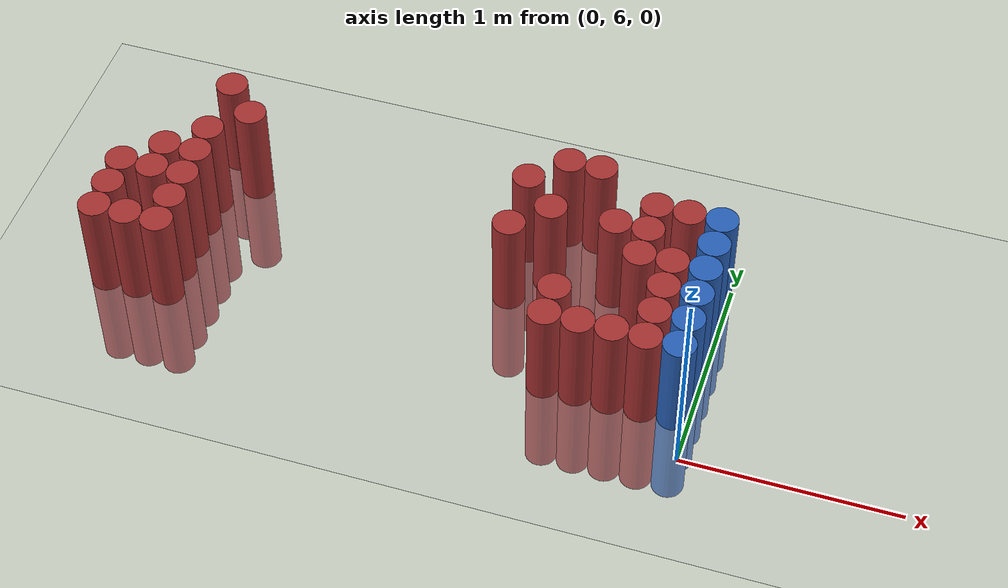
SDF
<sdf version="1.6">
 <world name="default">
  <model name="ground_plane">
   <static>1</static>
   <link name="link">
    <collision name="collision">
     <geometry><plane><normal>0 0 1</normal><size>100 100</size></plane></geometry>
     <surface><friction><ode><mu>100</mu><mu2>50</mu2></ode></friction></surface>
    </collision>
    <visual name="visual">
     <cast_shadows>0</cast_shadows>
     <geometry><plane><normal>0 0 1</normal><size>100 100</size></plane></geometry>
     <material>
      <script><uri>file://media/materials/scripts/gazebo.material</uri><name>Gazebo/Grey</name></script>
     </material>
    </visual>
   </link>
  </model>
  <model name="unit_cylinder_199">
   <static>1</static>
   <pose>-2.775000 6.225000 0.000000 0.000000 0.000000 0.000000</pose>
   <link name="link">
    <inertial>
     <mass>1</mass>
     <inertia><ixx>0.145833</ixx><ixy>0</ixy><ixz>0</ixz><iyy>0.145833</iyy><iyz>0</iyz><izz>0.125</izz></inertia>
    </inertial>
    <collision name="collision">
     <geometry><cylinder><radius>0.075000</radius><length>1</length></cylinder></geometry>
    </collision>
    <visual name="visual">
     <geometry><cylinder><radius>0.075000</radius><length>1</length></cylinder></geometry>
     <material>
      <ambient>0.648000 0.192000 0.192000 1</ambient>
      <diffuse>0.648000 0.192000 0.192000 1</diffuse>
     </material>
     <material>
      <script><name>Gazebo/Grey</name><uri>file://media/materials/scripts/gazebo.material</uri></script>
     </material>
    </visual>
    <sensor name="sensor_contact" type="contact"><contact><collision>collision</collision></contact></sensor>
   </link>
   <plugin filename="gz-sim-touchplugin-system" name="gz::sim::systems::TouchPlugin">
    <target>robot</target>
    <namespace>robot</namespace>
    <time>0.001</time>
    <enabled>true</enabled>
   </plugin>
  </model>
  <model name="unit_cylinder_200">
   <static>1</static>
   <pose>-2.775000 6.375000 0.000000 0.000000 0.000000 0.000000</pose>
   <link name="link">
    <inertial>
     <mass>1</mass>
     <inertia><ixx>0.145833</ixx><ixy>0</ixy><ixz>0</ixz><iyy>0.145833</iyy><iyz>0</iyz><izz>0.125</izz></inertia>
    </inertial>
    <collision name="collision">
     <geometry><cylinder><radius>0.075000</radius><length>1</length></cylinder></geometry>
    </collision>
    <visual name="visual">
     <geometry><cylinder><radius>0.075000</radius><length>1</length></cylinder></geometry>
     <material>
      <ambient>0.648000 0.192000 0.192000 1</ambient>
      <diffuse>0.648000 0.192000 0.192000 1</diffuse>
     </material>
     <material>
      <script><name>Gazebo/Grey</name><uri>file://media/materials/scripts/gazebo.material</uri></script>
     </material>
    </visual>
    <sensor name="sensor_contact" type="contact"><contact><collision>collision</collision></contact></sensor>
   </link>
   <plugin filename="gz-sim-touchplugin-system" name="gz::sim::systems::TouchPlugin">
    <target>robot</target>
    <namespace>robot</namespace>
    <time>0.001</time>
    <enabled>true</enabled>
   </plugin>
  </model>
  <model name="unit_cylinder_201">
   <static>1</static>
   <pose>-2.775000 6.525000 0.000000 0.000000 0.000000 0.000000</pose>
   <link name="link">
    <inertial>
     <mass>1</mass>
     <inertia><ixx>0.145833</ixx><ixy>0</ixy><ixz>0</ixz><iyy>0.145833</iyy><iyz>0</iyz><izz>0.125</izz></inertia>
    </inertial>
    <collision name="collision">
     <geometry><cylinder><radius>0.075000</radius><length>1</length></cylinder></geometry>
    </collision>
    <visual name="visual">
     <geometry><cylinder><radius>0.075000</radius><length>1</length></cylinder></geometry>
     <material>
      <ambient>0.648000 0.192000 0.192000 1</ambient>
      <diffuse>0.648000 0.192000 0.192000 1</diffuse>
     </material>
     <material>
      <script><name>Gazebo/Grey</name><uri>file://media/materials/scripts/gazebo.material</uri></script>
     </material>
    </visual>
    <sensor name="sensor_contact" type="contact"><contact><collision>collision</collision></contact></sensor>
   </link>
   <plugin filename="gz-sim-touchplugin-system" name="gz::sim::systems::TouchPlugin">
    <target>robot</target>
    <namespace>robot</namespace>
    <time>0.001</time>
    <enabled>true</enabled>
   </plugin>
  </model>
  <model name="unit_cylinder_209">
   <static>1</static>
   <pose>-2.625000 6.225000 0.000000 0.000000 0.000000 0.000000</pose>
   <link name="link">
    <inertial>
     <mass>1</mass>
     <inertia><ixx>0.145833</ixx><ixy>0</ixy><ixz>0</ixz><iyy>0.145833</iyy><iyz>0</iyz><izz>0.125</izz></inertia>
    </inertial>
    <collision name="collision">
     <geometry><cylinder><radius>0.075000</radius><length>1</length></cylinder></geometry>
    </collision>
    <visual name="visual">
     <geometry><cylinder><radius>0.075000</radius><length>1</length></cylinder></geometry>
     <material>
      <ambient>0.648000 0.192000 0.192000 1</ambient>
      <diffuse>0.648000 0.192000 0.192000 1</diffuse>
     </material>
     <material>
      <script><name>Gazebo/Grey</name><uri>file://media/materials/scripts/gazebo.material</uri></script>
     </material>
    </visual>
    <sensor name="sensor_contact" type="contact"><contact><collision>collision</collision></contact></sensor>
   </link>
   <plugin filename="gz-sim-touchplugin-system" name="gz::sim::systems::TouchPlugin">
    <target>robot</target>
    <namespace>robot</namespace>
    <time>0.001</time>
    <enabled>true</enabled>
   </plugin>
  </model>
  <model name="unit_cylinder_210">
   <static>1</static>
   <pose>-2.625000 6.525000 0.000000 0.000000 0.000000 0.000000</pose>
   <link name="link">
    <inertial>
     <mass>1</mass>
     <inertia><ixx>0.145833</ixx><ixy>0</ixy><ixz>0</ixz><iyy>0.145833</iyy><iyz>0</iyz><izz>0.125</izz></inertia>
    </inertial>
    <collision name="collision">
     <geometry><cylinder><radius>0.075000</radius><length>1</length></cylinder></geometry>
    </collision>
    <visual name="visual">
     <geometry><cylinder><radius>0.075000</radius><length>1</length></cylinder></geometry>
     <material>
      <ambient>0.648000 0.192000 0.192000 1</ambient>
      <diffuse>0.648000 0.192000 0.192000 1</diffuse>
     </material>
     <material>
      <script><name>Gazebo/Grey</name><uri>file://media/materials/scripts/gazebo.material</uri></script>
     </material>
    </visual>
    <sensor name="sensor_contact" type="contact"><contact><collision>collision</collision></contact></sensor>
   </link>
   <plugin filename="gz-sim-touchplugin-system" name="gz::sim::systems::TouchPlugin">
    <target>robot</target>
    <namespace>robot</namespace>
    <time>0.001</time>
    <enabled>true</enabled>
   </plugin>
  </model>
  <model name="unit_cylinder_211">
   <static>1</static>
   <pose>-2.625000 6.675000 0.000000 0.000000 0.000000 0.000000</pose>
   <link name="link">
    <inertial>
     <mass>1</mass>
     <inertia><ixx>0.145833</ixx><ixy>0</ixy><ixz>0</ixz><iyy>0.145833</iyy><iyz>0</iyz><izz>0.125</izz></inertia>
    </inertial>
    <collision name="collision">
     <geometry><cylinder><radius>0.075000</radius><length>1</length></cylinder></geometry>
    </collision>
    <visual name="visual">
     <geometry><cylinder><radius>0.075000</radius><length>1</length></cylinder></geometry>
     <material>
      <ambient>0.648000 0.192000 0.192000 1</ambient>
      <diffuse>0.648000 0.192000 0.192000 1</diffuse>
     </material>
     <material>
      <script><name>Gazebo/Grey</name><uri>file://media/materials/scripts/gazebo.material</uri></script>
     </material>
    </visual>
    <sensor name="sensor_contact" type="contact"><contact><collision>collision</collision></contact></sensor>
   </link>
   <plugin filename="gz-sim-touchplugin-system" name="gz::sim::systems::TouchPlugin">
    <target>robot</target>
    <namespace>robot</namespace>
    <time>0.001</time>
    <enabled>true</enabled>
   </plugin>
  </model>
  <model name="unit_cylinder_219">
   <static>1</static>
   <pose>-2.475000 6.225000 0.000000 0.000000 0.000000 0.000000</pose>
   <link name="link">
    <inertial>
     <mass>1</mass>
     <inertia><ixx>0.145833</ixx><ixy>0</ixy><ixz>0</ixz><iyy>0.145833</iyy><iyz>0</iyz><izz>0.125</izz></inertia>
    </inertial>
    <collision name="collision">
     <geometry><cylinder><radius>0.075000</radius><length>1</length></cylinder></geometry>
    </collision>
    <visual name="visual">
     <geometry><cylinder><radius>0.075000</radius><length>1</length></cylinder></geometry>
     <material>
      <ambient>0.648000 0.192000 0.192000 1</ambient>
      <diffuse>0.648000 0.192000 0.192000 1</diffuse>
     </material>
     <material>
      <script><name>Gazebo/Grey</name><uri>file://media/materials/scripts/gazebo.material</uri></script>
     </material>
    </visual>
    <sensor name="sensor_contact" type="contact"><contact><collision>collision</collision></contact></sensor>
   </link>
   <plugin filename="gz-sim-touchplugin-system" name="gz::sim::systems::TouchPlugin">
    <target>robot</target>
    <namespace>robot</namespace>
    <time>0.001</time>
    <enabled>true</enabled>
   </plugin>
  </model>
  <model name="unit_cylinder_220">
   <static>1</static>
   <pose>-2.475000 6.375000 0.000000 0.000000 0.000000 0.000000</pose>
   <link name="link">
    <inertial>
     <mass>1</mass>
     <inertia><ixx>0.145833</ixx><ixy>0</ixy><ixz>0</ixz><iyy>0.145833</iyy><iyz>0</iyz><izz>0.125</izz></inertia>
    </inertial>
    <collision name="collision">
     <geometry><cylinder><radius>0.075000</radius><length>1</length></cylinder></geometry>
    </collision>
    <visual name="visual">
     <geometry><cylinder><radius>0.075000</radius><length>1</length></cylinder></geometry>
     <material>
      <ambient>0.648000 0.192000 0.192000 1</ambient>
      <diffuse>0.648000 0.192000 0.192000 1</diffuse>
     </material>
     <material>
      <script><name>Gazebo/Grey</name><uri>file://media/materials/scripts/gazebo.material</uri></script>
     </material>
    </visual>
    <sensor name="sensor_contact" type="contact"><contact><collision>collision</collision></contact></sensor>
   </link>
   <plugin filename="gz-sim-touchplugin-system" name="gz::sim::systems::TouchPlugin">
    <target>robot</target>
    <namespace>robot</namespace>
    <time>0.001</time>
    <enabled>true</enabled>
   </plugin>
  </model>
  <model name="unit_cylinder_221">
   <static>1</static>
   <pose>-2.475000 6.525000 0.000000 0.000000 0.000000 0.000000</pose>
   <link name="link">
    <inertial>
     <mass>1</mass>
     <inertia><ixx>0.145833</ixx><ixy>0</ixy><ixz>0</ixz><iyy>0.145833</iyy><iyz>0</iyz><izz>0.125</izz></inertia>
    </inertial>
    <collision name="collision">
     <geometry><cylinder><radius>0.075000</radius><length>1</length></cylinder></geometry>
    </collision>
    <visual name="visual">
     <geometry><cylinder><radius>0.075000</radius><length>1</length></cylinder></geometry>
     <material>
      <ambient>0.648000 0.192000 0.192000 1</ambient>
      <diffuse>0.648000 0.192000 0.192000 1</diffuse>
     </material>
     <material>
      <script><name>Gazebo/Grey</name><uri>file://media/materials/scripts/gazebo.material</uri></script>
     </material>
    </visual>
    <sensor name="sensor_contact" type="contact"><contact><collision>collision</collision></contact></sensor>
   </link>
   <plugin filename="gz-sim-touchplugin-system" name="gz::sim::systems::TouchPlugin">
    <target>robot</target>
    <namespace>robot</namespace>
    <time>0.001</time>
    <enabled>true</enabled>
   </plugin>
  </model>
  <model name="unit_cylinder_222">
   <static>1</static>
   <pose>-2.475000 6.675000 0.000000 0.000000 0.000000 0.000000</pose>
   <link name="link">
    <inertial>
     <mass>1</mass>
     <inertia><ixx>0.145833</ixx><ixy>0</ixy><ixz>0</ixz><iyy>0.145833</iyy><iyz>0</iyz><izz>0.125</izz></inertia>
    </inertial>
    <collision name="collision">
     <geometry><cylinder><radius>0.075000</radius><length>1</length></cylinder></geometry>
    </collision>
    <visual name="visual">
     <geometry><cylinder><radius>0.075000</radius><length>1</length></cylinder></geometry>
     <material>
      <ambient>0.648000 0.192000 0.192000 1</ambient>
      <diffuse>0.648000 0.192000 0.192000 1</diffuse>
     </material>
     <material>
      <script><name>Gazebo/Grey</name><uri>file://media/materials/scripts/gazebo.material</uri></script>
     </material>
    </visual>
    <sensor name="sensor_contact" type="contact"><contact><collision>collision</collision></contact></sensor>
   </link>
   <plugin filename="gz-sim-touchplugin-system" name="gz::sim::systems::TouchPlugin">
    <target>robot</target>
    <namespace>robot</namespace>
    <time>0.001</time>
    <enabled>true</enabled>
   </plugin>
  </model>
  <model name="unit_cylinder_223">
   <static>1</static>
   <pose>-2.475000 6.825000 0.000000 0.000000 0.000000 0.000000</pose>
   <link name="link">
    <inertial>
     <mass>1</mass>
     <inertia><ixx>0.145833</ixx><ixy>0</ixy><ixz>0</ixz><iyy>0.145833</iyy><iyz>0</iyz><izz>0.125</izz></inertia>
    </inertial>
    <collision name="collision">
     <geometry><cylinder><radius>0.075000</radius><length>1</length></cylinder></geometry>
    </collision>
    <visual name="visual">
     <geometry><cylinder><radius>0.075000</radius><length>1</length></cylinder></geometry>
     <material>
      <ambient>0.648000 0.192000 0.192000 1</ambient>
      <diffuse>0.648000 0.192000 0.192000 1</diffuse>
     </material>
     <material>
      <script><name>Gazebo/Grey</name><uri>file://media/materials/scripts/gazebo.material</uri></script>
     </material>
    </visual>
    <sensor name="sensor_contact" type="contact"><contact><collision>collision</collision></contact></sensor>
   </link>
   <plugin filename="gz-sim-touchplugin-system" name="gz::sim::systems::TouchPlugin">
    <target>robot</target>
    <namespace>robot</namespace>
    <time>0.001</time>
    <enabled>true</enabled>
   </plugin>
  </model>
  <model name="unit_cylinder_224">
   <static>1</static>
   <pose>-2.475000 7.125000 0.000000 0.000000 0.000000 0.000000</pose>
   <link name="link">
    <inertial>
     <mass>1</mass>
     <inertia><ixx>0.145833</ixx><ixy>0</ixy><ixz>0</ixz><iyy>0.145833</iyy><iyz>0</iyz><izz>0.125</izz></inertia>
    </inertial>
    <collision name="collision">
     <geometry><cylinder><radius>0.075000</radius><length>1</length></cylinder></geometry>
    </collision>
    <visual name="visual">
     <geometry><cylinder><radius>0.075000</radius><length>1</length></cylinder></geometry>
     <material>
      <ambient>0.648000 0.192000 0.192000 1</ambient>
      <diffuse>0.648000 0.192000 0.192000 1</diffuse>
     </material>
     <material>
      <script><name>Gazebo/Grey</name><uri>file://media/materials/scripts/gazebo.material</uri></script>
     </material>
    </visual>
    <sensor name="sensor_contact" type="contact"><contact><collision>collision</collision></contact></sensor>
   </link>
   <plugin filename="gz-sim-touchplugin-system" name="gz::sim::systems::TouchPlugin">
    <target>robot</target>
    <namespace>robot</namespace>
    <time>0.001</time>
    <enabled>true</enabled>
   </plugin>
  </model>
  <model name="unit_cylinder_235">
   <static>1</static>
   <pose>-2.325000 6.975000 0.000000 0.000000 0.000000 0.000000</pose>
   <link name="link">
    <inertial>
     <mass>1</mass>
     <inertia><ixx>0.145833</ixx><ixy>0</ixy><ixz>0</ixz><iyy>0.145833</iyy><iyz>0</iyz><izz>0.125</izz></inertia>
    </inertial>
    <collision name="collision">
     <geometry><cylinder><radius>0.075000</radius><length>1</length></cylinder></geometry>
    </collision>
    <visual name="visual">
     <geometry><cylinder><radius>0.075000</radius><length>1</length></cylinder></geometry>
     <material>
      <ambient>0.648000 0.192000 0.192000 1</ambient>
      <diffuse>0.648000 0.192000 0.192000 1</diffuse>
     </material>
     <material>
      <script><name>Gazebo/Grey</name><uri>file://media/materials/scripts/gazebo.material</uri></script>
     </material>
    </visual>
    <sensor name="sensor_contact" type="contact"><contact><collision>collision</collision></contact></sensor>
   </link>
   <plugin filename="gz-sim-touchplugin-system" name="gz::sim::systems::TouchPlugin">
    <target>robot</target>
    <namespace>robot</namespace>
    <time>0.001</time>
    <enabled>true</enabled>
   </plugin>
  </model>
  <model name="unit_cylinder_255">
   <static>1</static>
   <pose>-0.975000 6.675000 0.000000 0.000000 0.000000 0.000000</pose>
   <link name="link">
    <inertial>
     <mass>1</mass>
     <inertia><ixx>0.145833</ixx><ixy>0</ixy><ixz>0</ixz><iyy>0.145833</iyy><iyz>0</iyz><izz>0.125</izz></inertia>
    </inertial>
    <collision name="collision">
     <geometry><cylinder><radius>0.075000</radius><length>1</length></cylinder></geometry>
    </collision>
    <visual name="visual">
     <geometry><cylinder><radius>0.075000</radius><length>1</length></cylinder></geometry>
     <material>
      <ambient>0.648000 0.192000 0.192000 1</ambient>
      <diffuse>0.648000 0.192000 0.192000 1</diffuse>
     </material>
     <material>
      <script><name>Gazebo/Grey</name><uri>file://media/materials/scripts/gazebo.material</uri></script>
     </material>
    </visual>
    <sensor name="sensor_contact" type="contact"><contact><collision>collision</collision></contact></sensor>
   </link>
   <plugin filename="gz-sim-touchplugin-system" name="gz::sim::systems::TouchPlugin">
    <target>robot</target>
    <namespace>robot</namespace>
    <time>0.001</time>
    <enabled>true</enabled>
   </plugin>
  </model>
  <model name="unit_cylinder_256">
   <static>1</static>
   <pose>-0.975000 6.975000 0.000000 0.000000 0.000000 0.000000</pose>
   <link name="link">
    <inertial>
     <mass>1</mass>
     <inertia><ixx>0.145833</ixx><ixy>0</ixy><ixz>0</ixz><iyy>0.145833</iyy><iyz>0</iyz><izz>0.125</izz></inertia>
    </inertial>
    <collision name="collision">
     <geometry><cylinder><radius>0.075000</radius><length>1</length></cylinder></geometry>
    </collision>
    <visual name="visual">
     <geometry><cylinder><radius>0.075000</radius><length>1</length></cylinder></geometry>
     <material>
      <ambient>0.648000 0.192000 0.192000 1</ambient>
      <diffuse>0.648000 0.192000 0.192000 1</diffuse>
     </material>
     <material>
      <script><name>Gazebo/Grey</name><uri>file://media/materials/scripts/gazebo.material</uri></script>
     </material>
    </visual>
    <sensor name="sensor_contact" type="contact"><contact><collision>collision</collision></contact></sensor>
   </link>
   <plugin filename="gz-sim-touchplugin-system" name="gz::sim::systems::TouchPlugin">
    <target>robot</target>
    <namespace>robot</namespace>
    <time>0.001</time>
    <enabled>true</enabled>
   </plugin>
  </model>
  <model name="unit_cylinder_261">
   <static>1</static>
   <pose>-0.825000 6.825000 0.000000 0.000000 0.000000 0.000000</pose>
   <link name="link">
    <inertial>
     <mass>1</mass>
     <inertia><ixx>0.145833</ixx><ixy>0</ixy><ixz>0</ixz><iyy>0.145833</iyy><iyz>0</iyz><izz>0.125</izz></inertia>
    </inertial>
    <collision name="collision">
     <geometry><cylinder><radius>0.075000</radius><length>1</length></cylinder></geometry>
    </collision>
    <visual name="visual">
     <geometry><cylinder><radius>0.075000</radius><length>1</length></cylinder></geometry>
     <material>
      <ambient>0.648000 0.192000 0.192000 1</ambient>
      <diffuse>0.648000 0.192000 0.192000 1</diffuse>
     </material>
     <material>
      <script><name>Gazebo/Grey</name><uri>file://media/materials/scripts/gazebo.material</uri></script>
     </material>
    </visual>
    <sensor name="sensor_contact" type="contact"><contact><collision>collision</collision></contact></sensor>
   </link>
   <plugin filename="gz-sim-touchplugin-system" name="gz::sim::systems::TouchPlugin">
    <target>robot</target>
    <namespace>robot</namespace>
    <time>0.001</time>
    <enabled>true</enabled>
   </plugin>
  </model>
  <model name="unit_cylinder_262">
   <static>1</static>
   <pose>-0.825000 7.125000 0.000000 0.000000 0.000000 0.000000</pose>
   <link name="link">
    <inertial>
     <mass>1</mass>
     <inertia><ixx>0.145833</ixx><ixy>0</ixy><ixz>0</ixz><iyy>0.145833</iyy><iyz>0</iyz><izz>0.125</izz></inertia>
    </inertial>
    <collision name="collision">
     <geometry><cylinder><radius>0.075000</radius><length>1</length></cylinder></geometry>
    </collision>
    <visual name="visual">
     <geometry><cylinder><radius>0.075000</radius><length>1</length></cylinder></geometry>
     <material>
      <ambient>0.648000 0.192000 0.192000 1</ambient>
      <diffuse>0.648000 0.192000 0.192000 1</diffuse>
     </material>
     <material>
      <script><name>Gazebo/Grey</name><uri>file://media/materials/scripts/gazebo.material</uri></script>
     </material>
    </visual>
    <sensor name="sensor_contact" type="contact"><contact><collision>collision</collision></contact></sensor>
   </link>
   <plugin filename="gz-sim-touchplugin-system" name="gz::sim::systems::TouchPlugin">
    <target>robot</target>
    <namespace>robot</namespace>
    <time>0.001</time>
    <enabled>true</enabled>
   </plugin>
  </model>
  <model name="unit_cylinder_265">
   <static>1</static>
   <pose>-0.675000 6.225000 0.000000 0.000000 0.000000 0.000000</pose>
   <link name="link">
    <inertial>
     <mass>1</mass>
     <inertia><ixx>0.145833</ixx><ixy>0</ixy><ixz>0</ixz><iyy>0.145833</iyy><iyz>0</iyz><izz>0.125</izz></inertia>
    </inertial>
    <collision name="collision">
     <geometry><cylinder><radius>0.075000</radius><length>1</length></cylinder></geometry>
    </collision>
    <visual name="visual">
     <geometry><cylinder><radius>0.075000</radius><length>1</length></cylinder></geometry>
     <material>
      <ambient>0.648000 0.192000 0.192000 1</ambient>
      <diffuse>0.648000 0.192000 0.192000 1</diffuse>
     </material>
     <material>
      <script><name>Gazebo/Grey</name><uri>file://media/materials/scripts/gazebo.material</uri></script>
     </material>
    </visual>
    <sensor name="sensor_contact" type="contact"><contact><collision>collision</collision></contact></sensor>
   </link>
   <plugin filename="gz-sim-touchplugin-system" name="gz::sim::systems::TouchPlugin">
    <target>robot</target>
    <namespace>robot</namespace>
    <time>0.001</time>
    <enabled>true</enabled>
   </plugin>
  </model>
  <model name="unit_cylinder_266">
   <static>1</static>
   <pose>-0.675000 6.375000 0.000000 0.000000 0.000000 0.000000</pose>
   <link name="link">
    <inertial>
     <mass>1</mass>
     <inertia><ixx>0.145833</ixx><ixy>0</ixy><ixz>0</ixz><iyy>0.145833</iyy><iyz>0</iyz><izz>0.125</izz></inertia>
    </inertial>
    <collision name="collision">
     <geometry><cylinder><radius>0.075000</radius><length>1</length></cylinder></geometry>
    </collision>
    <visual name="visual">
     <geometry><cylinder><radius>0.075000</radius><length>1</length></cylinder></geometry>
     <material>
      <ambient>0.648000 0.192000 0.192000 1</ambient>
      <diffuse>0.648000 0.192000 0.192000 1</diffuse>
     </material>
     <material>
      <script><name>Gazebo/Grey</name><uri>file://media/materials/scripts/gazebo.material</uri></script>
     </material>
    </visual>
    <sensor name="sensor_contact" type="contact"><contact><collision>collision</collision></contact></sensor>
   </link>
   <plugin filename="gz-sim-touchplugin-system" name="gz::sim::systems::TouchPlugin">
    <target>robot</target>
    <namespace>robot</namespace>
    <time>0.001</time>
    <enabled>true</enabled>
   </plugin>
  </model>
  <model name="unit_cylinder_267">
   <static>1</static>
   <pose>-0.675000 7.125000 0.000000 0.000000 0.000000 0.000000</pose>
   <link name="link">
    <inertial>
     <mass>1</mass>
     <inertia><ixx>0.145833</ixx><ixy>0</ixy><ixz>0</ixz><iyy>0.145833</iyy><iyz>0</iyz><izz>0.125</izz></inertia>
    </inertial>
    <collision name="collision">
     <geometry><cylinder><radius>0.075000</radius><length>1</length></cylinder></geometry>
    </collision>
    <visual name="visual">
     <geometry><cylinder><radius>0.075000</radius><length>1</length></cylinder></geometry>
     <material>
      <ambient>0.648000 0.192000 0.192000 1</ambient>
      <diffuse>0.648000 0.192000 0.192000 1</diffuse>
     </material>
     <material>
      <script><name>Gazebo/Grey</name><uri>file://media/materials/scripts/gazebo.material</uri></script>
     </material>
    </visual>
    <sensor name="sensor_contact" type="contact"><contact><collision>collision</collision></contact></sensor>
   </link>
   <plugin filename="gz-sim-touchplugin-system" name="gz::sim::systems::TouchPlugin">
    <target>robot</target>
    <namespace>robot</namespace>
    <time>0.001</time>
    <enabled>true</enabled>
   </plugin>
  </model>
  <model name="unit_cylinder_272">
   <static>1</static>
   <pose>-0.525000 6.225000 0.000000 0.000000 0.000000 0.000000</pose>
   <link name="link">
    <inertial>
     <mass>1</mass>
     <inertia><ixx>0.145833</ixx><ixy>0</ixy><ixz>0</ixz><iyy>0.145833</iyy><iyz>0</iyz><izz>0.125</izz></inertia>
    </inertial>
    <collision name="collision">
     <geometry><cylinder><radius>0.075000</radius><length>1</length></cylinder></geometry>
    </collision>
    <visual name="visual">
     <geometry><cylinder><radius>0.075000</radius><length>1</length></cylinder></geometry>
     <material>
      <ambient>0.648000 0.192000 0.192000 1</ambient>
      <diffuse>0.648000 0.192000 0.192000 1</diffuse>
     </material>
     <material>
      <script><name>Gazebo/Grey</name><uri>file://media/materials/scripts/gazebo.material</uri></script>
     </material>
    </visual>
    <sensor name="sensor_contact" type="contact"><contact><collision>collision</collision></contact></sensor>
   </link>
   <plugin filename="gz-sim-touchplugin-system" name="gz::sim::systems::TouchPlugin">
    <target>robot</target>
    <namespace>robot</namespace>
    <time>0.001</time>
    <enabled>true</enabled>
   </plugin>
  </model>
  <model name="unit_cylinder_273">
   <static>1</static>
   <pose>-0.525000 6.825000 0.000000 0.000000 0.000000 0.000000</pose>
   <link name="link">
    <inertial>
     <mass>1</mass>
     <inertia><ixx>0.145833</ixx><ixy>0</ixy><ixz>0</ixz><iyy>0.145833</iyy><iyz>0</iyz><izz>0.125</izz></inertia>
    </inertial>
    <collision name="collision">
     <geometry><cylinder><radius>0.075000</radius><length>1</length></cylinder></geometry>
    </collision>
    <visual name="visual">
     <geometry><cylinder><radius>0.075000</radius><length>1</length></cylinder></geometry>
     <material>
      <ambient>0.648000 0.192000 0.192000 1</ambient>
      <diffuse>0.648000 0.192000 0.192000 1</diffuse>
     </material>
     <material>
      <script><name>Gazebo/Grey</name><uri>file://media/materials/scripts/gazebo.material</uri></script>
     </material>
    </visual>
    <sensor name="sensor_contact" type="contact"><contact><collision>collision</collision></contact></sensor>
   </link>
   <plugin filename="gz-sim-touchplugin-system" name="gz::sim::systems::TouchPlugin">
    <target>robot</target>
    <namespace>robot</namespace>
    <time>0.001</time>
    <enabled>true</enabled>
   </plugin>
  </model>
  <model name="unit_cylinder_279">
   <static>1</static>
   <pose>-0.375000 6.225000 0.000000 0.000000 0.000000 0.000000</pose>
   <link name="link">
    <inertial>
     <mass>1</mass>
     <inertia><ixx>0.145833</ixx><ixy>0</ixy><ixz>0</ixz><iyy>0.145833</iyy><iyz>0</iyz><izz>0.125</izz></inertia>
    </inertial>
    <collision name="collision">
     <geometry><cylinder><radius>0.075000</radius><length>1</length></cylinder></geometry>
    </collision>
    <visual name="visual">
     <geometry><cylinder><radius>0.075000</radius><length>1</length></cylinder></geometry>
     <material>
      <ambient>0.648000 0.192000 0.192000 1</ambient>
      <diffuse>0.648000 0.192000 0.192000 1</diffuse>
     </material>
     <material>
      <script><name>Gazebo/Grey</name><uri>file://media/materials/scripts/gazebo.material</uri></script>
     </material>
    </visual>
    <sensor name="sensor_contact" type="contact"><contact><collision>collision</collision></contact></sensor>
   </link>
   <plugin filename="gz-sim-touchplugin-system" name="gz::sim::systems::TouchPlugin">
    <target>robot</target>
    <namespace>robot</namespace>
    <time>0.001</time>
    <enabled>true</enabled>
   </plugin>
  </model>
  <model name="unit_cylinder_280">
   <static>1</static>
   <pose>-0.375000 6.675000 0.000000 0.000000 0.000000 0.000000</pose>
   <link name="link">
    <inertial>
     <mass>1</mass>
     <inertia><ixx>0.145833</ixx><ixy>0</ixy><ixz>0</ixz><iyy>0.145833</iyy><iyz>0</iyz><izz>0.125</izz></inertia>
    </inertial>
    <collision name="collision">
     <geometry><cylinder><radius>0.075000</radius><length>1</length></cylinder></geometry>
    </collision>
    <visual name="visual">
     <geometry><cylinder><radius>0.075000</radius><length>1</length></cylinder></geometry>
     <material>
      <ambient>0.648000 0.192000 0.192000 1</ambient>
      <diffuse>0.648000 0.192000 0.192000 1</diffuse>
     </material>
     <material>
      <script><name>Gazebo/Grey</name><uri>file://media/materials/scripts/gazebo.material</uri></script>
     </material>
    </visual>
    <sensor name="sensor_contact" type="contact"><contact><collision>collision</collision></contact></sensor>
   </link>
   <plugin filename="gz-sim-touchplugin-system" name="gz::sim::systems::TouchPlugin">
    <target>robot</target>
    <namespace>robot</namespace>
    <time>0.001</time>
    <enabled>true</enabled>
   </plugin>
  </model>
  <model name="unit_cylinder_281">
   <static>1</static>
   <pose>-0.375000 6.825000 0.000000 0.000000 0.000000 0.000000</pose>
   <link name="link">
    <inertial>
     <mass>1</mass>
     <inertia><ixx>0.145833</ixx><ixy>0</ixy><ixz>0</ixz><iyy>0.145833</iyy><iyz>0</iyz><izz>0.125</izz></inertia>
    </inertial>
    <collision name="collision">
     <geometry><cylinder><radius>0.075000</radius><length>1</length></cylinder></geometry>
    </collision>
    <visual name="visual">
     <geometry><cylinder><radius>0.075000</radius><length>1</length></cylinder></geometry>
     <material>
      <ambient>0.648000 0.192000 0.192000 1</ambient>
      <diffuse>0.648000 0.192000 0.192000 1</diffuse>
     </material>
     <material>
      <script><name>Gazebo/Grey</name><uri>file://media/materials/scripts/gazebo.material</uri></script>
     </material>
    </visual>
    <sensor name="sensor_contact" type="contact"><contact><collision>collision</collision></contact></sensor>
   </link>
   <plugin filename="gz-sim-touchplugin-system" name="gz::sim::systems::TouchPlugin">
    <target>robot</target>
    <namespace>robot</namespace>
    <time>0.001</time>
    <enabled>true</enabled>
   </plugin>
  </model>
  <model name="unit_cylinder_282">
   <static>1</static>
   <pose>-0.375000 6.975000 0.000000 0.000000 0.000000 0.000000</pose>
   <link name="link">
    <inertial>
     <mass>1</mass>
     <inertia><ixx>0.145833</ixx><ixy>0</ixy><ixz>0</ixz><iyy>0.145833</iyy><iyz>0</iyz><izz>0.125</izz></inertia>
    </inertial>
    <collision name="collision">
     <geometry><cylinder><radius>0.075000</radius><length>1</length></cylinder></geometry>
    </collision>
    <visual name="visual">
     <geometry><cylinder><radius>0.075000</radius><length>1</length></cylinder></geometry>
     <material>
      <ambient>0.648000 0.192000 0.192000 1</ambient>
      <diffuse>0.648000 0.192000 0.192000 1</diffuse>
     </material>
     <material>
      <script><name>Gazebo/Grey</name><uri>file://media/materials/scripts/gazebo.material</uri></script>
     </material>
    </visual>
    <sensor name="sensor_contact" type="contact"><contact><collision>collision</collision></contact></sensor>
   </link>
   <plugin filename="gz-sim-touchplugin-system" name="gz::sim::systems::TouchPlugin">
    <target>robot</target>
    <namespace>robot</namespace>
    <time>0.001</time>
    <enabled>true</enabled>
   </plugin>
  </model>
  <model name="unit_cylinder_291">
   <static>1</static>
   <pose>-0.225000 6.225000 0.000000 0.000000 0.000000 0.000000</pose>
   <link name="link">
    <inertial>
     <mass>1</mass>
     <inertia><ixx>0.145833</ixx><ixy>0</ixy><ixz>0</ixz><iyy>0.145833</iyy><iyz>0</iyz><izz>0.125</izz></inertia>
    </inertial>
    <collision name="collision">
     <geometry><cylinder><radius>0.075000</radius><length>1</length></cylinder></geometry>
    </collision>
    <visual name="visual">
     <geometry><cylinder><radius>0.075000</radius><length>1</length></cylinder></geometry>
     <material>
      <ambient>0.648000 0.192000 0.192000 1</ambient>
      <diffuse>0.648000 0.192000 0.192000 1</diffuse>
     </material>
     <material>
      <script><name>Gazebo/Grey</name><uri>file://media/materials/scripts/gazebo.material</uri></script>
     </material>
    </visual>
    <sensor name="sensor_contact" type="contact"><contact><collision>collision</collision></contact></sensor>
   </link>
   <plugin filename="gz-sim-touchplugin-system" name="gz::sim::systems::TouchPlugin">
    <target>robot</target>
    <namespace>robot</namespace>
    <time>0.001</time>
    <enabled>true</enabled>
   </plugin>
  </model>
  <model name="unit_cylinder_292">
   <static>1</static>
   <pose>-0.225000 6.375000 0.000000 0.000000 0.000000 0.000000</pose>
   <link name="link">
    <inertial>
     <mass>1</mass>
     <inertia><ixx>0.145833</ixx><ixy>0</ixy><ixz>0</ixz><iyy>0.145833</iyy><iyz>0</iyz><izz>0.125</izz></inertia>
    </inertial>
    <collision name="collision">
     <geometry><cylinder><radius>0.075000</radius><length>1</length></cylinder></geometry>
    </collision>
    <visual name="visual">
     <geometry><cylinder><radius>0.075000</radius><length>1</length></cylinder></geometry>
     <material>
      <ambient>0.648000 0.192000 0.192000 1</ambient>
      <diffuse>0.648000 0.192000 0.192000 1</diffuse>
     </material>
     <material>
      <script><name>Gazebo/Grey</name><uri>file://media/materials/scripts/gazebo.material</uri></script>
     </material>
    </visual>
    <sensor name="sensor_contact" type="contact"><contact><collision>collision</collision></contact></sensor>
   </link>
   <plugin filename="gz-sim-touchplugin-system" name="gz::sim::systems::TouchPlugin">
    <target>robot</target>
    <namespace>robot</namespace>
    <time>0.001</time>
    <enabled>true</enabled>
   </plugin>
  </model>
  <model name="unit_cylinder_293">
   <static>1</static>
   <pose>-0.225000 6.525000 0.000000 0.000000 0.000000 0.000000</pose>
   <link name="link">
    <inertial>
     <mass>1</mass>
     <inertia><ixx>0.145833</ixx><ixy>0</ixy><ixz>0</ixz><iyy>0.145833</iyy><iyz>0</iyz><izz>0.125</izz></inertia>
    </inertial>
    <collision name="collision">
     <geometry><cylinder><radius>0.075000</radius><length>1</length></cylinder></geometry>
    </collision>
    <visual name="visual">
     <geometry><cylinder><radius>0.075000</radius><length>1</length></cylinder></geometry>
     <material>
      <ambient>0.648000 0.192000 0.192000 1</ambient>
      <diffuse>0.648000 0.192000 0.192000 1</diffuse>
     </material>
     <material>
      <script><name>Gazebo/Grey</name><uri>file://media/materials/scripts/gazebo.material</uri></script>
     </material>
    </visual>
    <sensor name="sensor_contact" type="contact"><contact><collision>collision</collision></contact></sensor>
   </link>
   <plugin filename="gz-sim-touchplugin-system" name="gz::sim::systems::TouchPlugin">
    <target>robot</target>
    <namespace>robot</namespace>
    <time>0.001</time>
    <enabled>true</enabled>
   </plugin>
  </model>
  <model name="unit_cylinder_294">
   <static>1</static>
   <pose>-0.225000 6.675000 0.000000 0.000000 0.000000 0.000000</pose>
   <link name="link">
    <inertial>
     <mass>1</mass>
     <inertia><ixx>0.145833</ixx><ixy>0</ixy><ixz>0</ixz><iyy>0.145833</iyy><iyz>0</iyz><izz>0.125</izz></inertia>
    </inertial>
    <collision name="collision">
     <geometry><cylinder><radius>0.075000</radius><length>1</length></cylinder></geometry>
    </collision>
    <visual name="visual">
     <geometry><cylinder><radius>0.075000</radius><length>1</length></cylinder></geometry>
     <material>
      <ambient>0.648000 0.192000 0.192000 1</ambient>
      <diffuse>0.648000 0.192000 0.192000 1</diffuse>
     </material>
     <material>
      <script><name>Gazebo/Grey</name><uri>file://media/materials/scripts/gazebo.material</uri></script>
     </material>
    </visual>
    <sensor name="sensor_contact" type="contact"><contact><collision>collision</collision></contact></sensor>
   </link>
   <plugin filename="gz-sim-touchplugin-system" name="gz::sim::systems::TouchPlugin">
    <target>robot</target>
    <namespace>robot</namespace>
    <time>0.001</time>
    <enabled>true</enabled>
   </plugin>
  </model>
  <model name="unit_cylinder_295">
   <static>1</static>
   <pose>-0.225000 6.975000 0.000000 0.000000 0.000000 0.000000</pose>
   <link name="link">
    <inertial>
     <mass>1</mass>
     <inertia><ixx>0.145833</ixx><ixy>0</ixy><ixz>0</ixz><iyy>0.145833</iyy><iyz>0</iyz><izz>0.125</izz></inertia>
    </inertial>
    <collision name="collision">
     <geometry><cylinder><radius>0.075000</radius><length>1</length></cylinder></geometry>
    </collision>
    <visual name="visual">
     <geometry><cylinder><radius>0.075000</radius><length>1</length></cylinder></geometry>
     <material>
      <ambient>0.648000 0.192000 0.192000 1</ambient>
      <diffuse>0.648000 0.192000 0.192000 1</diffuse>
     </material>
     <material>
      <script><name>Gazebo/Grey</name><uri>file://media/materials/scripts/gazebo.material</uri></script>
     </material>
    </visual>
    <sensor name="sensor_contact" type="contact"><contact><collision>collision</collision></contact></sensor>
   </link>
   <plugin filename="gz-sim-touchplugin-system" name="gz::sim::systems::TouchPlugin">
    <target>robot</target>
    <namespace>robot</namespace>
    <time>0.001</time>
    <enabled>true</enabled>
   </plugin>
  </model>
  <model name="unit_cylinder_313">
   <static>1</static>
   <pose>-0.075000 6.225000 0.000000 0.000000 0.000000 0.000000</pose>
   <link name="link">
    <inertial>
     <mass>1</mass>
     <inertia><ixx>0.145833</ixx><ixy>0</ixy><ixz>0</ixz><iyy>0.145833</iyy><iyz>0</iyz><izz>0.125</izz></inertia>
    </inertial>
    <collision name="collision">
     <geometry><cylinder><radius>0.075000</radius><length>1</length></cylinder></geometry>
    </collision>
    <visual name="visual">
     <geometry><cylinder><radius>0.075000</radius><length>1</length></cylinder></geometry>
     <material>
      <ambient>0.152000 0.379000 0.720000 1</ambient>
      <diffuse>0.152000 0.379000 0.720000 1</diffuse>
     </material>
     <material>
      <script><name>Gazebo/Grey</name><uri>file://media/materials/scripts/gazebo.material</uri></script>
     </material>
    </visual>
    <sensor name="sensor_contact" type="contact"><contact><collision>collision</collision></contact></sensor>
   </link>
   <plugin filename="gz-sim-touchplugin-system" name="gz::sim::systems::TouchPlugin">
    <target>robot</target>
    <namespace>robot</namespace>
    <time>0.001</time>
    <enabled>true</enabled>
   </plugin>
  </model>
  <model name="unit_cylinder_314">
   <static>1</static>
   <pose>-0.075000 6.375000 0.000000 0.000000 0.000000 0.000000</pose>
   <link name="link">
    <inertial>
     <mass>1</mass>
     <inertia><ixx>0.145833</ixx><ixy>0</ixy><ixz>0</ixz><iyy>0.145833</iyy><iyz>0</iyz><izz>0.125</izz></inertia>
    </inertial>
    <collision name="collision">
     <geometry><cylinder><radius>0.075000</radius><length>1</length></cylinder></geometry>
    </collision>
    <visual name="visual">
     <geometry><cylinder><radius>0.075000</radius><length>1</length></cylinder></geometry>
     <material>
      <ambient>0.152000 0.379000 0.720000 1</ambient>
      <diffuse>0.152000 0.379000 0.720000 1</diffuse>
     </material>
     <material>
      <script><name>Gazebo/Grey</name><uri>file://media/materials/scripts/gazebo.material</uri></script>
     </material>
    </visual>
    <sensor name="sensor_contact" type="contact"><contact><collision>collision</collision></contact></sensor>
   </link>
   <plugin filename="gz-sim-touchplugin-system" name="gz::sim::systems::TouchPlugin">
    <target>robot</target>
    <namespace>robot</namespace>
    <time>0.001</time>
    <enabled>true</enabled>
   </plugin>
  </model>
  <model name="unit_cylinder_315">
   <static>1</static>
   <pose>-0.075000 6.525000 0.000000 0.000000 0.000000 0.000000</pose>
   <link name="link">
    <inertial>
     <mass>1</mass>
     <inertia><ixx>0.145833</ixx><ixy>0</ixy><ixz>0</ixz><iyy>0.145833</iyy><iyz>0</iyz><izz>0.125</izz></inertia>
    </inertial>
    <collision name="collision">
     <geometry><cylinder><radius>0.075000</radius><length>1</length></cylinder></geometry>
    </collision>
    <visual name="visual">
     <geometry><cylinder><radius>0.075000</radius><length>1</length></cylinder></geometry>
     <material>
      <ambient>0.152000 0.379000 0.720000 1</ambient>
      <diffuse>0.152000 0.379000 0.720000 1</diffuse>
     </material>
     <material>
      <script><name>Gazebo/Grey</name><uri>file://media/materials/scripts/gazebo.material</uri></script>
     </material>
    </visual>
    <sensor name="sensor_contact" type="contact"><contact><collision>collision</collision></contact></sensor>
   </link>
   <plugin filename="gz-sim-touchplugin-system" name="gz::sim::systems::TouchPlugin">
    <target>robot</target>
    <namespace>robot</namespace>
    <time>0.001</time>
    <enabled>true</enabled>
   </plugin>
  </model>
  <model name="unit_cylinder_316">
   <static>1</static>
   <pose>-0.075000 6.675000 0.000000 0.000000 0.000000 0.000000</pose>
   <link name="link">
    <inertial>
     <mass>1</mass>
     <inertia><ixx>0.145833</ixx><ixy>0</ixy><ixz>0</ixz><iyy>0.145833</iyy><iyz>0</iyz><izz>0.125</izz></inertia>
    </inertial>
    <collision name="collision">
     <geometry><cylinder><radius>0.075000</radius><length>1</length></cylinder></geometry>
    </collision>
    <visual name="visual">
     <geometry><cylinder><radius>0.075000</radius><length>1</length></cylinder></geometry>
     <material>
      <ambient>0.152000 0.379000 0.720000 1</ambient>
      <diffuse>0.152000 0.379000 0.720000 1</diffuse>
     </material>
     <material>
      <script><name>Gazebo/Grey</name><uri>file://media/materials/scripts/gazebo.material</uri></script>
     </material>
    </visual>
    <sensor name="sensor_contact" type="contact"><contact><collision>collision</collision></contact></sensor>
   </link>
   <plugin filename="gz-sim-touchplugin-system" name="gz::sim::systems::TouchPlugin">
    <target>robot</target>
    <namespace>robot</namespace>
    <time>0.001</time>
    <enabled>true</enabled>
   </plugin>
  </model>
  <model name="unit_cylinder_317">
   <static>1</static>
   <pose>-0.075000 6.825000 0.000000 0.000000 0.000000 0.000000</pose>
   <link name="link">
    <inertial>
     <mass>1</mass>
     <inertia><ixx>0.145833</ixx><ixy>0</ixy><ixz>0</ixz><iyy>0.145833</iyy><iyz>0</iyz><izz>0.125</izz></inertia>
    </inertial>
    <collision name="collision">
     <geometry><cylinder><radius>0.075000</radius><length>1</length></cylinder></geometry>
    </collision>
    <visual name="visual">
     <geometry><cylinder><radius>0.075000</radius><length>1</length></cylinder></geometry>
     <material>
      <ambient>0.152000 0.379000 0.720000 1</ambient>
      <diffuse>0.152000 0.379000 0.720000 1</diffuse>
     </material>
     <material>
      <script><name>Gazebo/Grey</name><uri>file://media/materials/scripts/gazebo.material</uri></script>
     </material>
    </visual>
    <sensor name="sensor_contact" type="contact"><contact><collision>collision</collision></contact></sensor>
   </link>
   <plugin filename="gz-sim-touchplugin-system" name="gz::sim::systems::TouchPlugin">
    <target>robot</target>
    <namespace>robot</namespace>
    <time>0.001</time>
    <enabled>true</enabled>
   </plugin>
  </model>
  <model name="unit_cylinder_318">
   <static>1</static>
   <pose>-0.075000 6.975000 0.000000 0.000000 0.000000 0.000000</pose>
   <link name="link">
    <inertial>
     <mass>1</mass>
     <inertia><ixx>0.145833</ixx><ixy>0</ixy><ixz>0</ixz><iyy>0.145833</iyy><iyz>0</iyz><izz>0.125</izz></inertia>
    </inertial>
    <collision name="collision">
     <geometry><cylinder><radius>0.075000</radius><length>1</length></cylinder></geometry>
    </collision>
    <visual name="visual">
     <geometry><cylinder><radius>0.075000</radius><length>1</length></cylinder></geometry>
     <material>
      <ambient>0.152000 0.379000 0.720000 1</ambient>
      <diffuse>0.152000 0.379000 0.720000 1</diffuse>
     </material>
     <material>
      <script><name>Gazebo/Grey</name><uri>file://media/materials/scripts/gazebo.material</uri></script>
     </material>
    </visual>
    <sensor name="sensor_contact" type="contact"><contact><collision>collision</collision></contact></sensor>
   </link>
   <plugin filename="gz-sim-touchplugin-system" name="gz::sim::systems::TouchPlugin">
    <target>robot</target>
    <namespace>robot</namespace>
    <time>0.001</time>
    <enabled>true</enabled>
   </plugin>
  </model>
 </world>
</sdf>
